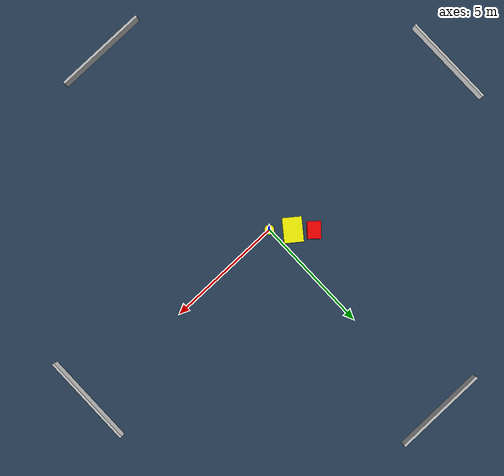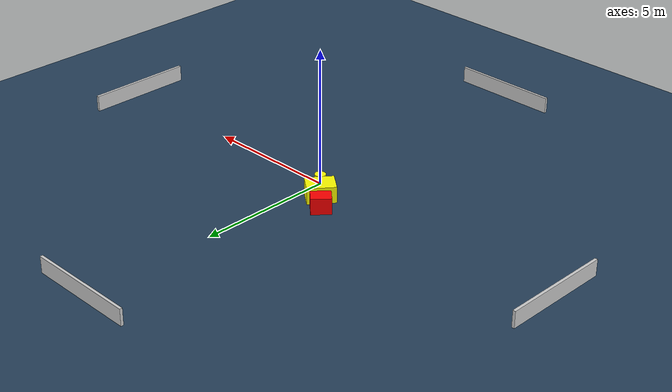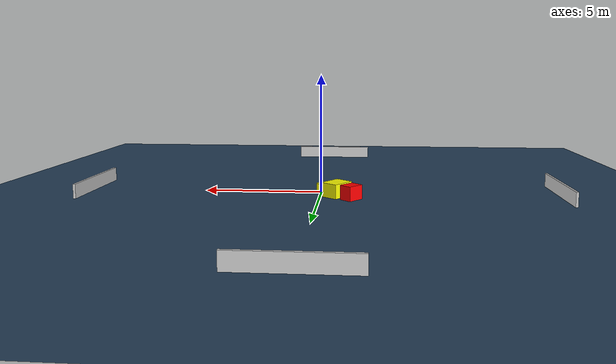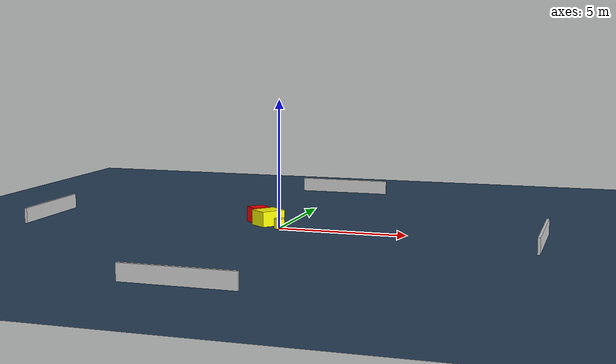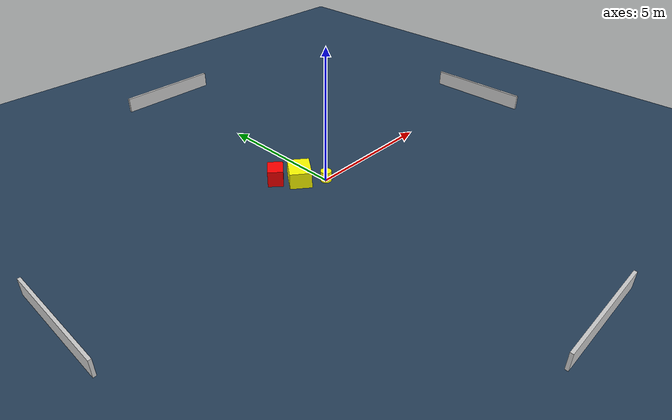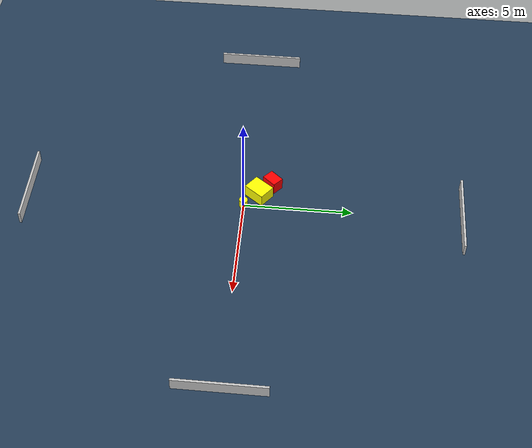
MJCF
<?xml version="1.0" ?>
<mujoco model="generated_environment">
  <option timestep="0.01" integrator="RK4" cone="elliptic"/>
  <default>
    <geom density="1"/>
  </default>
  <asset>
    <texture builtin="gradient" height="3072" name="skybox" rgb1="0.3 0.5 0.7" rgb2="0 0 0" type="skybox" width="512"/>
    <texture builtin="checker" height="300" name="groundplane" rgb1="0.2 0.3 0.4" rgb2="0.1 0.2 0.3" type="2d" width="300"/>
    <material name="groundplane" reflectance="0.2" texrepeat="5 5" texture="groundplane"/>
  </asset>
  <worldbody>
    <light dir="0 0 -1" directional="true" pos="0 0 1.5"/>
    <geom condim="3" friction="0.5 0.005 0.001" material="groundplane" name="floor" pos="0 0 0" size="0 0 0.05" type="plane"/>
    <body name="walls">
      <geom name="wall_1" condim="4" pos="-10.0 0.0 0.3" rgba="0.800000011920929 0.800000011920929 0.800000011920929 1.0" size="0.05 2.0 0.3" type="box"/>
      <geom name="wall_2" condim="4" pos="10.0 0.0 0.3" rgba="0.800000011920929 0.800000011920929 0.800000011920929 1.0" size="0.05 2.0 0.3" type="box"/>
      <geom name="wall_3" condim="4" pos="0.0 -10.0 0.3" rgba="0.800000011920929 0.800000011920929 0.800000011920929 1.0" size="2.0 0.05 0.3" type="box"/>
      <geom name="wall_4" condim="4" pos="0.0 10.0 0.3" rgba="0.800000011920929 0.800000011920929 0.800000011920929 1.0" size="2.0 0.05 0.3" type="box"/>
    </body>
    <body name="robot">
      <joint name="joint_x" type="slide" pos="0 0 0" axis="1 0 0"/>
      <joint name="joint_y" type="slide" pos="0 0 0" axis="0 1 0"/>
      <geom name="robot" type="cylinder" pos="0.0 0.0 0.2" size="0.2 0.2 0.0" mass="5.0" friction="1.0 0.005 0.0001" condim="4" rgba="1.0 1.0 0.0 1.0"/>
    </body>
    <body name="obstacle_1_movable">
      <geom name="obstacle_1_movable" condim="4" pos="-0.6819176374451745 0.6621007302169236 0.3" euler="0 0 322.2960500991576" friction="0.0 0.005 0.001" rgba="1.0 1.0 0.0 1.0" size="0.39855418919083196 0.5132915152772601 0.3" type="box" mass="0.1"/>
      <joint type="free"/>
    </body>
    <body name="obstacle_2_static">
      <geom name="obstacle_2_static" condim="4" pos="-1.3052798002418684 1.2513439551898222 0.3" euler="0 0 228.1667795640137" friction="0.0 0.005 0.001" rgba="1.0 0.0 0.0 1.0" size="0.3585592056389765 0.2775244814221084 0.3" type="box"/>
    </body>
  </worldbody>
  <actuator>
    <motor name="actuator_x" joint="joint_x" gear="1" ctrlrange="-1 1"/>
    <motor name="actuator_y" joint="joint_y" gear="1" ctrlrange="-1 1"/>
  </actuator>
</mujoco>
